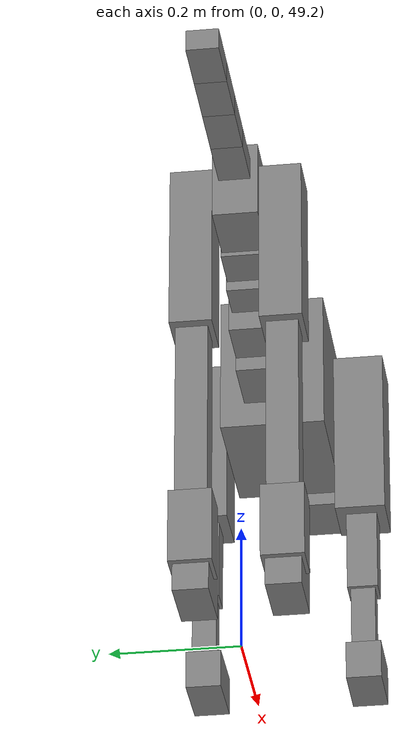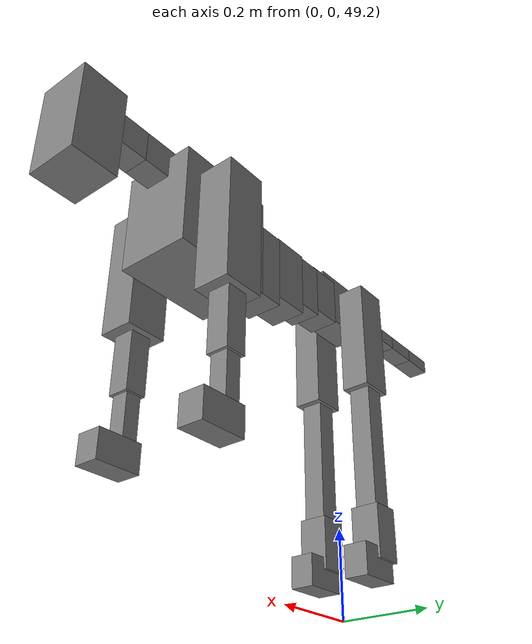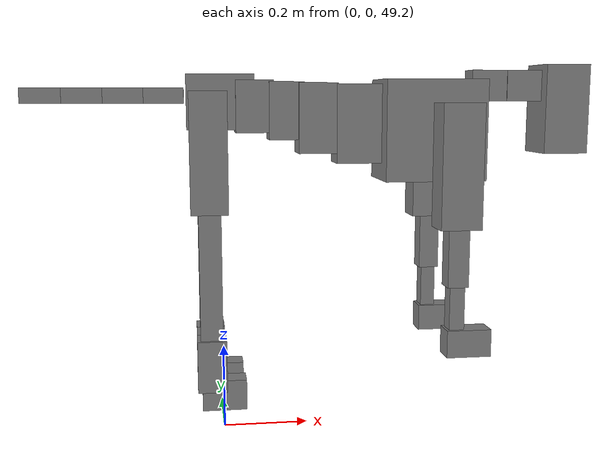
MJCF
<mujoco model="dog">

    <default>
        <joint armature="0.02" stiffness="1" damping="0.2" limited="true"/>
        <geom condim="3" friction="1 0.05 0.05" margin="0.01"/>
        <motor ctrllimited="true" ctrlrange="-1.0 1.0" forcelimited="true" gear="50"/>
    </default>

    <compiler inertiafromgeom="true" angle="radian"/>

    <option timestep="0.016" iterations="50" tolerance="1e-10" solver="Newton" jacobian="dense" cone="pyramidal"/>

    <size nconmax="20000" njmax="60000" nstack="5000000"/>
    <visual>
        <map force="0.1" zfar="30"/>
        <rgba haze="0.15 0.25 0.35 1"/>
        <quality shadowsize="2048"/>
        <global offwidth="800" offheight="800"/>
    </visual>

    <asset>
        <texture type="skybox" builtin="gradient" rgb1="0.3 0.5 0.7" rgb2="0 0 0" width="512" height="512"/>
        <texture name="texplane" type="2d" builtin="checker" rgb1=".2 .3 .4" rgb2=".1 0.15 0.2" width="512" height="512"
                 mark="cross" markrgb=".8 .8 .8"/>
        <texture name="texgeom" type="cube" builtin="flat" mark="cross" width="127" height="1278" rgb1="0.8 0.6 0.4"
                 rgb2="0.8 0.6 0.4" markrgb="1 1 1" random="0.01"/>

        <material name="matplane" reflectance="0.3" texture="texplane" texrepeat="1 1" texuniform="true"/>
        <material name="matgeom" texture="texgeom" texuniform="true" rgba="0.8 0.6 .4 1"/>
    </asset>

    <worldbody>
        <geom name="floor" pos="0 0 0" size="0 0 .25" type="plane" material="matplane" condim="3"/>

        <light directional="false" diffuse=".2 .2 .2" specular="0 0 0" pos="0 0 5" dir="0 0 -1" castshadow="false"/>
        <light mode="targetbodycom" target="torso" directional="false" diffuse=".8 .8 .8" specular="0.3 0.3 0.3"
               pos="0 0 4.0" dir="0 0 -1"/>

        <body name="root" pos="0 0 50">
            <freejoint name="root_1"/>
            <geom type="box" pos="0 0 -0.02" size="0.0774  0.0358  0.063" density="2030"/>

            <body name="spine1" pos="0.054 0 0">
                <joint name="spine1_y" axis="0 1 0" range="0 0.7" limited="true"/>
                <geom type="box" pos="0.02375 0 -0.03" size="0.04375  0.0375  0.05985" density="2030"/>

                <body name="spine2" pos="0.0612 0 0">
                    <joint name="spine2_y" axis="0 1 0" range="-0.15 0.15" limited="true"/>
                    <geom type="box" pos="0.03555  0  -0.04" size="0.04055  0.039  0.06615" density="2030"/>

                    <body name="spine3" pos="0.0730 0 0">
                        <joint name="spine3_y" axis="0 1 0" range="-0.15 0.15" limited="true"/>
                        <geom type="box" pos="0.03555  0  -0.057" size="0.04555  0.0445  0.081" density="2030"/>

                        <body name="spine4" pos="0.0780 0 0">
                            <joint name="spine4_y" axis="0 1 0" range="-0.15 0.15" limited="true"/>
                            <geom type="box" pos="0.05265  0  -0.07" size="0.05265  0.045  0.09135" density="2030"/>

                            <body name="torso" pos="0.1082 0 0">
                                <joint name="torso_y" axis="0 1 0" range="-0.15 0.15" limited="true"/>
                                <geom type="box" pos="0.11925  0  -0.085" size="0.11925  0.085  0.11745"
                                      density="2030"/>

                                <body name="neck1" pos="0.2160  0   0.0180">
                                    <joint name="neck1_y" axis="0 1 0" range="-1.2  -1" limited="true"/>
                                    <geom type="box" pos="0.0423  0  0" size="0.0423  0.03  0.036" density="2325"/>

                                    <body name="neck2" pos="0.0853  0  0">
                                        <joint name="neck2_y" axis="0 1 0" range="0.1  0" limited="true"/>
                                        <geom type="box" pos="0.0423  0  0" size="0.0423  0.03  0.036" density="2325"/>

                                        <body name="head" pos="0.0853  0  0">
                                            <joint name="head_y" axis="0 1 0" range="-0.3  -0.2" limited="true"/>
                                            <geom type="box" pos="0.0531  0  -0.055" size="0.0531  0.06  0.1044"
                                                  density="4030"/>

                                        </body>
                                    </body>
                                </body>

                                <body name="front_shoulder" pos="0.156  0   -0.0480">
                                    <joint name="front_shoulder_y" axis="0 1 0" range="-1 1.5" limited="true"/>
                                    <geom type="box" pos="0 0.13 -0.1154" size="0.0477  0.0408  0.1420" density="1158"/>
                                    <geom type="box" pos="0 -0.13 -0.1154" size="0.0477  0.0408  0.1420"
                                          density="1158"/>

                                    <body name="front_elbow" pos="0  0  -0.2308">
                                        <joint name="front_elbow_y" axis="0 1 0" range="-2 0" limited="true"/>
                                        <geom type="box" pos="0 0.13 -0.0806" size="0.0243  0.0249  0.0806"
                                              density="1081"/>
                                        <geom type="box" pos="0 -0.13 -0.0806" size="0.0243  0.0249  0.0806"
                                              density="1081"/>

                                        <body name="front_wrist" pos="0  0  -0.1613">
                                            <joint name="front_wrist_y" axis="0 1 0" range="-0.2 0" limited="true"/>
                                            <geom type="box" pos="0 0.13 -0.0575" size="0.0177  0.0197  0.0706"
                                                  density="1664"/>
                                            <geom type="box" pos="0 -0.13 -0.0575" size="0.0177  0.0197  0.0706"
                                                  density="1664"/>

                                            <body name="front_finger_end" pos="0  0  -0.1150">
                                                <joint name="front_finger_y" axis="0 1 0" range="-0.4 1"
                                                       limited="true"/>
                                                <geom type="box" pos="0.0285  0.13  -0.0170"
                                                      size="0.0523  0.0285  0.0320" density="1515"/>
                                                <geom type="box" pos="0.0285  -0.13  -0.0170"
                                                      size="0.0523  0.0285  0.0320" density="1515"/>

                                            </body>

                                        </body>
                                    </body>
                                </body>

                            </body>
                        </body>
                    </body>
                </body>
            </body>

            <body name="back_hip" pos="-0.03 0 -0.018">
                <joint name="back_hip_y" axis="0 1 0" range="-1.5 0.3" limited="true"/>
                <geom type="box" pos="0 0.07 -0.1146" size="0.0424  0.0333  0.1374" density="1154"/>
                <geom type="box" pos="0 -0.07 -0.1146" size="0.0424  0.0333  0.1374" density="1154"/>

                <body name="back_knee" pos="0  0  -0.2292">
                    <joint name="back_knee_y" axis="0 1 0" range="0 2.8" limited="true"/>
                    <geom type="box" pos="0 0.07 -0.1625" size="0.0256  0.0252  0.1781" density="1227"/>
                    <geom type="box" pos="0 -0.07 -0.1625" size="0.0256  0.0252  0.1781" density="1227"/>

                    <body name="back_ankle" pos="0  0  -0.3251">
                        <joint name="back_ankle_y" axis="0 1 0" range="-2.2 0" limited="true"/>
                        <geom type="box" pos="0 0.07 -0.0492" size="0.0335  0.0335  0.0604" density="1284"/>
                        <geom type="box" pos="0 -0.07 -0.0492" size="0.0335  0.0335  0.0604" density="1284"/>

                        <body name="back_toe_end" pos="0  0  -0.0984">
                            <joint name="back_toe_y" axis="0 1 0" range="-0.4 1" limited="true"/>
                            <geom type="box" pos="0.0276  0.07  -0.0204" size="0.0507  0.0276  0.0354" density="1515"/>
                            <geom type="box" pos="0.0276  -0.07  -0.0204" size="0.0507  0.0276  0.0354" density="1515"/>

                        </body>
                    </body>
                </body>
            </body>

            <body name="tail1" pos="-0.074 0 -0.006">
                <joint name="tail1_y" axis="0 1 0" range="-0.2 0.2" limited="true"/>
                <geom type="box" pos="-0.0536  0  0" size="0.045  0.025  0.0175" density="1587"/>

                <body name="tail2" pos="-0.09 0 0">
                    <joint name="tail2_y" axis="0 1 0" range="-0.2 0.2" limited="true"/>
                    <geom type="box" pos="-0.0536  0  0" size="0.045  0.025  0.0175" density="1587"/>

                    <body name="tail3" pos="-0.09 0 0">
                        <joint name="tail3_y" axis="0 1 0" range="-0.2 0.2" limited="true"/>
                        <geom type="box" pos="-0.0536  0  0" size="0.045  0.025  0.0175" density="1587"/>

                        <body name="tail4" pos="-0.09 0 0">
                            <joint name="tail4_y" axis="0 1 0" range="-0.2 0.2" limited="true"/>
                            <geom type="box" pos="-0.0536  0  0" size="0.045  0.025  0.0175" density="1587"/>

                        </body>
                    </body>
                </body>
            </body>
        </body>
    </worldbody>

    <actuator>
        <motor joint="spine1_y" forcerange="-150 150     "/>
        <motor joint="spine2_y" forcerange="-150 150     "/>
        <motor joint="spine3_y" forcerange="-150 150     "/>
        <motor joint="spine4_y" forcerange="-150 150     "/>
        <motor joint="torso_y" forcerange="-150 150     "/>
        <motor joint="neck1_y" forcerange="-100 100       "/>
        <motor joint="neck2_y" forcerange="-100 100       "/>
        <motor joint="head_y" forcerange="-150 150       "/>
        <motor joint="front_shoulder_y" forcerange="-180.28 191.45"/>
        <motor joint="front_elbow_y" forcerange="-137.38 143.47"/>
        <motor joint="front_wrist_y" forcerange="-89.83 67.52"/>
        <motor joint="front_finger_y" forcerange="-41.31 70.91"/>
        <motor joint="back_hip_y" forcerange="-275.62 367.76"/>
        <motor joint="back_knee_y" forcerange="-336.05 230.85"/>
        <motor joint="back_angle_y" forcerange="-239.11 196.43"/>
        <motor joint="back_toe_y" forcerange="-110.59 30.51"/>
        <motor joint="tail1_y" forcerange="-50 50     "/>
        <motor joint="tail2_y" forcerange="-50 50     "/>
        <motor joint="tail3_y" forcerange="-50 50     "/>
        <motor joint="tail4_y" forcerange="-50 50     "/>
    </actuator>
</mujoco>
